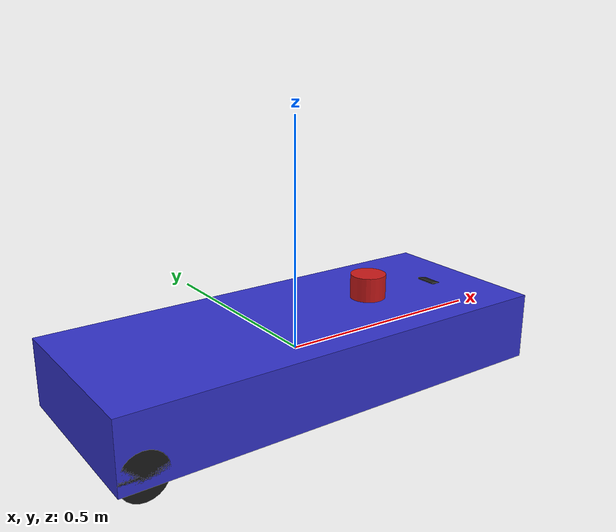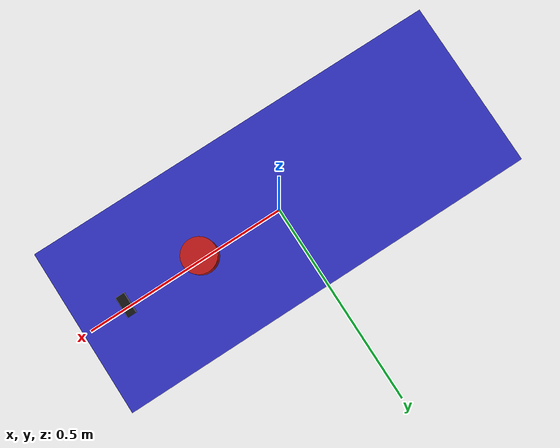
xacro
<?xml version="1.0"?>
<robot name="marina_asv" xmlns:xacro="http://www.ros.org/wiki/xacro">

  <!-- Properties -->
  <xacro:property name="hull_length" value="1.0"/>
  <xacro:property name="hull_width" value="0.4"/>
  <xacro:property name="hull_height" value="0.15"/>
  <xacro:property name="hull_mass" value="5.0"/>

  <!-- Base link (hull) -->
  <link name="base_link">
    <visual>
      <geometry>
        <box size="${hull_length} ${hull_width} ${hull_height}"/>
      </geometry>
      <material name="hull_color">
        <color rgba="0.2 0.2 0.8 1.0"/>
      </material>
    </visual>
    <collision>
      <geometry>
        <box size="${hull_length} ${hull_width} ${hull_height}"/>
      </geometry>
    </collision>
    <inertial>
      <mass value="${hull_mass}"/>
      <inertia
        ixx="0.1" ixy="0.0" ixz="0.0"
        iyy="0.4" iyz="0.0"
        izz="0.4"/>
    </inertial>
  </link>

  <!-- Left thruster -->
  <link name="thruster_left">
    <visual>
      <geometry>
        <cylinder radius="0.05" length="0.1"/>
      </geometry>
      <material name="thruster_color">
        <color rgba="0.1 0.1 0.1 1.0"/>
      </material>
    </visual>
    <inertial>
      <mass value="0.2"/>
      <inertia ixx="0.001" ixy="0" ixz="0"
               iyy="0.001" iyz="0" izz="0.001"/>
    </inertial>
  </link>

  <joint name="thruster_left_joint" type="fixed">
    <parent link="base_link"/>
    <child link="thruster_left"/>
    <origin xyz="-0.45 0.15 -0.05" rpy="1.5708 0 0"/>
  </joint>

  <!-- Right thruster -->
  <link name="thruster_right">
    <visual>
      <geometry>
        <cylinder radius="0.05" length="0.1"/>
      </geometry>
      <material name="thruster_color">
        <color rgba="0.1 0.1 0.1 1.0"/>
      </material>
    </visual>
    <inertial>
      <mass value="0.2"/>
      <inertia ixx="0.001" ixy="0" ixz="0"
               iyy="0.001" iyz="0" izz="0.001"/>
    </inertial>
  </link>

  <joint name="thruster_right_joint" type="fixed">
    <parent link="base_link"/>
    <child link="thruster_right"/>
    <origin xyz="-0.45 -0.15 -0.05" rpy="1.5708 0 0"/>
  </joint>

  <!-- IMU sensor -->
  <link name="imu_link">
    <inertial>
      <mass value="0.01"/>
      <inertia ixx="0.0001" ixy="0" ixz="0"
               iyy="0.0001" iyz="0" izz="0.0001"/>
    </inertial>
  </link>

  <joint name="imu_joint" type="fixed">
    <parent link="base_link"/>
    <child link="imu_link"/>
    <origin xyz="0.0 0.0 0.05" rpy="0 0 0"/>
  </joint>

  <!-- GPS -->
  <link name="gps_link">
    <inertial>
      <mass value="0.01"/>
      <inertia ixx="0.0001" ixy="0" ixz="0"
               iyy="0.0001" iyz="0" izz="0.0001"/>
    </inertial>
  </link>

  <joint name="gps_joint" type="fixed">
    <parent link="base_link"/>
    <child link="gps_link"/>
    <origin xyz="0.1 0.0 0.1" rpy="0 0 0"/>
  </joint>

  <!-- Lidar -->
  <link name="lidar_link">
    <visual>
      <geometry>
        <cylinder radius="0.04" length="0.06"/>
      </geometry>
      <material name="lidar_color">
        <color rgba="0.8 0.1 0.1 1.0"/>
      </material>
    </visual>
    <inertial>
      <mass value="0.1"/>
      <inertia ixx="0.001" ixy="0" ixz="0"
               iyy="0.001" iyz="0" izz="0.001"/>
    </inertial>
  </link>

  <joint name="lidar_joint" type="fixed">
    <parent link="base_link"/>
    <child link="lidar_link"/>
    <origin xyz="0.2 0.0 0.1" rpy="0 0 0"/>
  </joint>

  <!-- Camera -->
  <link name="camera_link">
    <visual>
      <geometry>
        <box size="0.05 0.05 0.05"/>
      </geometry>
      <material name="camera_color">
        <color rgba="0.1 0.1 0.1 1.0"/>
      </material>
    </visual>
    <inertial>
      <mass value="0.05"/>
      <inertia ixx="0.0001" ixy="0" ixz="0"
               iyy="0.0001" iyz="0" izz="0.0001"/>
    </inertial>
  </link>

  <joint name="camera_joint" type="fixed">
    <parent link="base_link"/>
    <child link="camera_link"/>
    <origin xyz="0.4 0.0 0.05" rpy="0 0.2 0"/>
  </joint>

</robot>
